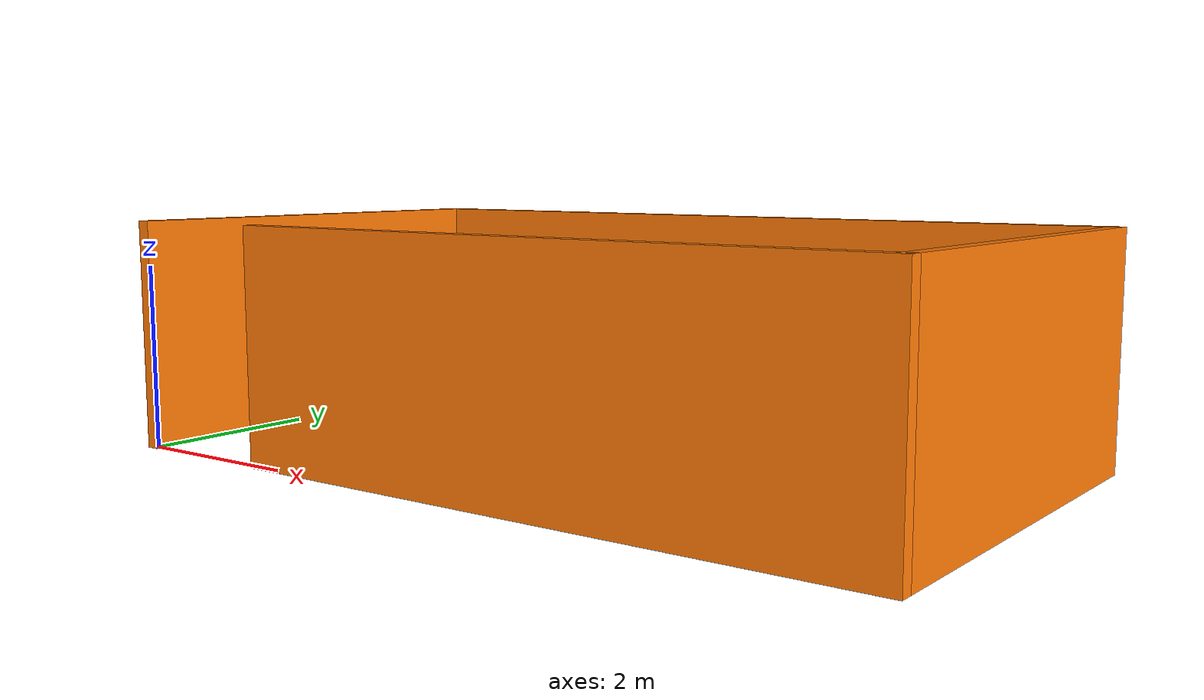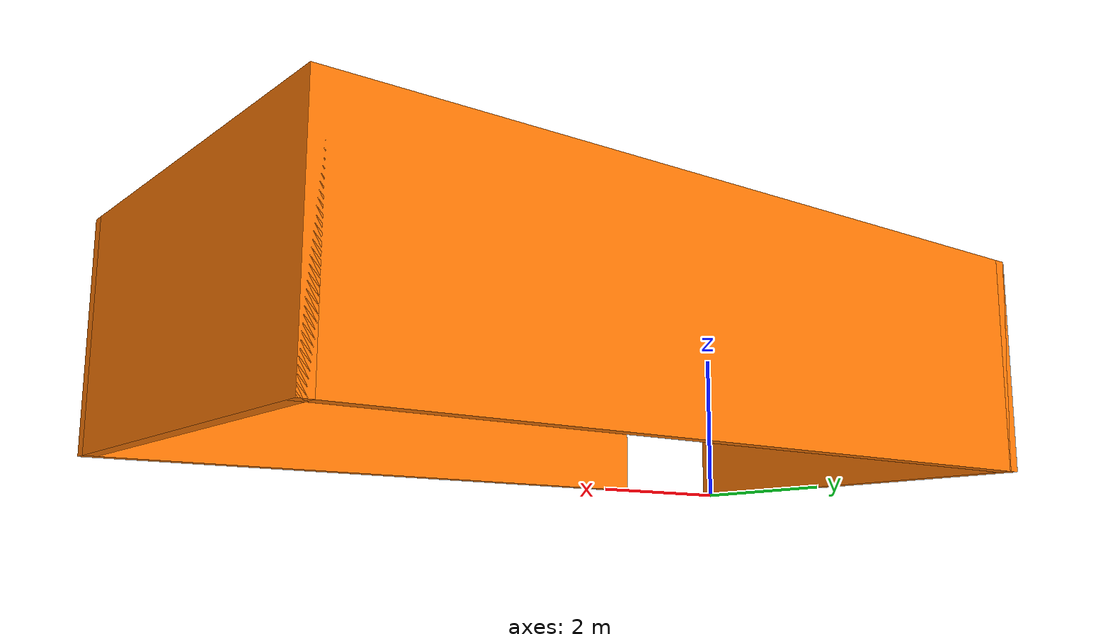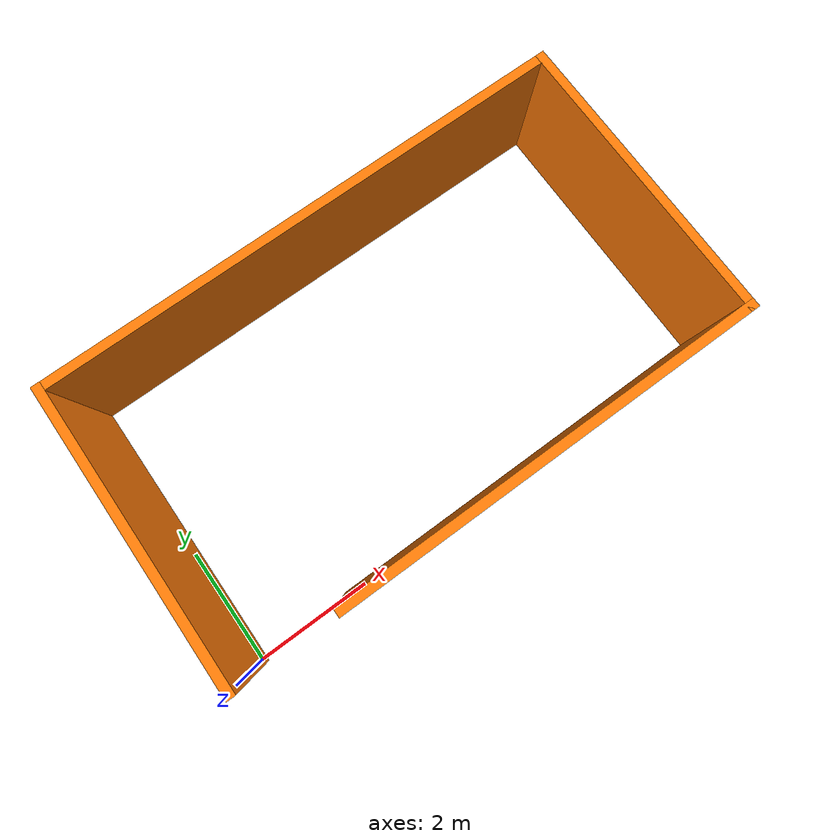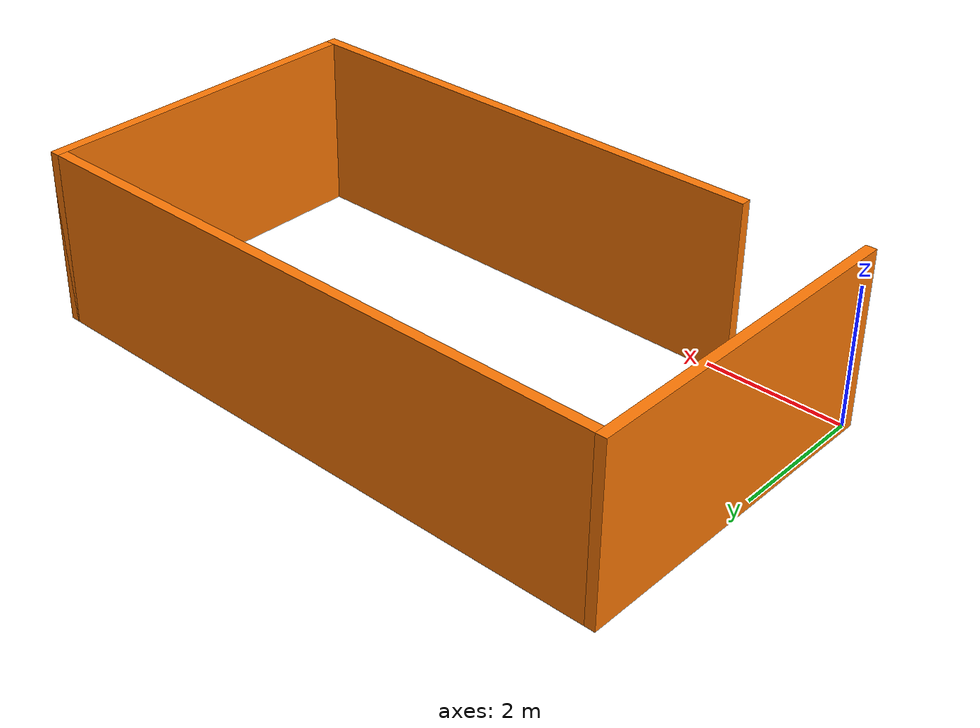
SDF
<?xml version='1.0'?>
<sdf version='1.7'>
  <model name='room'>
    <pose>4.425 2.425 0 0 -0 0</pose>
    <link name='Wall_11'>
      <collision name='Wall_11_Collision'>
        <geometry>
          <box>
            <size>5 0.15 2.5</size>
          </box>
        </geometry>
        <pose>0 0 1.25 0 -0 0</pose>
      </collision>
      <visual name='Wall_11_Visual'>
        <pose>0 0 1.25 0 -0 0</pose>
        <geometry>
          <box>
            <size>5 0.15 2.5</size>
          </box>
        </geometry>
        <material>
          <script>
            <uri>file://media/materials/scripts/gazebo.material</uri>
            <name>Gazebo/Grey</name>
          </script>
          <ambient>0.996078 0.47451 0.0196078 1</ambient>
        </material>
        <meta>
          <layer>0</layer>
        </meta>
      </visual>
      <pose>-4.425 0 0 0 -0 1.5708</pose>
    </link>
    <link name='Wall_18'>
      <collision name='Wall_18_Collision'>
        <geometry>
          <box>
            <size>9 0.15 2.5</size>
          </box>
        </geometry>
        <pose>0 0 1.25 0 -0 0</pose>
      </collision>
      <visual name='Wall_18_Visual'>
        <pose>0 0 1.25 0 -0 0</pose>
        <geometry>
          <box>
            <size>9 0.15 2.5</size>
          </box>
        </geometry>
        <material>
          <script>
            <uri>file://media/materials/scripts/gazebo.material</uri>
            <name>Gazebo/Grey</name>
          </script>
          <ambient>0.996078 0.47451 0.0196078 1</ambient>
        </material>
        <meta>
          <layer>0</layer>
        </meta>
      </visual>
      <pose>-0 2.425 0 0 -0 0</pose>
    </link>
    <link name='Wall_19'>
      <collision name='Wall_19_Collision'>
        <geometry>
          <box>
            <size>5 0.15 2.5</size>
          </box>
        </geometry>
        <pose>0 0 1.25 0 -0 0</pose>
      </collision>
      <visual name='Wall_19_Visual'>
        <pose>0 0 1.25 0 -0 0</pose>
        <geometry>
          <box>
            <size>5 0.15 2.5</size>
          </box>
        </geometry>
        <material>
          <script>
            <uri>file://media/materials/scripts/gazebo.material</uri>
            <name>Gazebo/Grey</name>
          </script>
          <ambient>0.996078 0.47451 0.0196078 1</ambient>
        </material>
        <meta>
          <layer>0</layer>
        </meta>
      </visual>
      <pose>4.425 0 0 0 -0 -1.5708</pose>
    </link>
    <link name='Wall_23'>
      <collision name='Wall_23_Collision'>
        <geometry>
          <box>
            <size>7.25 0.15 2.5</size>
          </box>
        </geometry>
        <pose>0 0 1.25 0 -0 0</pose>
      </collision>
      <visual name='Wall_23_Visual'>
        <pose>0 0 1.25 0 -0 0</pose>
        <geometry>
          <box>
            <size>7.25 0.15 2.5</size>
          </box>
        </geometry>
        <material>
          <script>
            <uri>file://media/materials/scripts/gazebo.material</uri>
            <name>Gazebo/Grey</name>
          </script>
          <ambient>0.996078 0.47451 0.0196078 1</ambient>
        </material>
        <meta>
          <layer>0</layer>
        </meta>
      </visual>
      <pose>0.875 -2.425 0 0 -0 3.14159</pose>
    </link>
    <static>1</static>
  </model>
</sdf>
